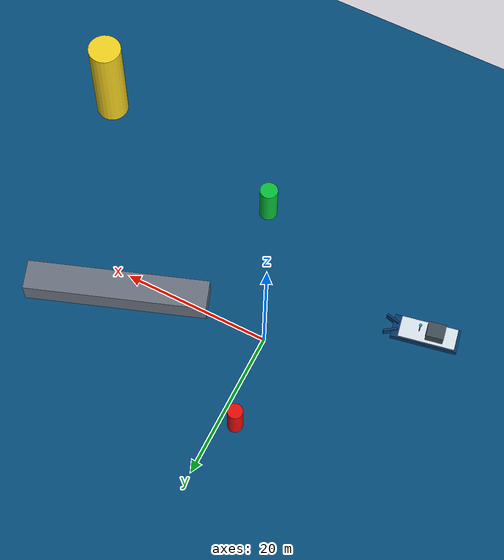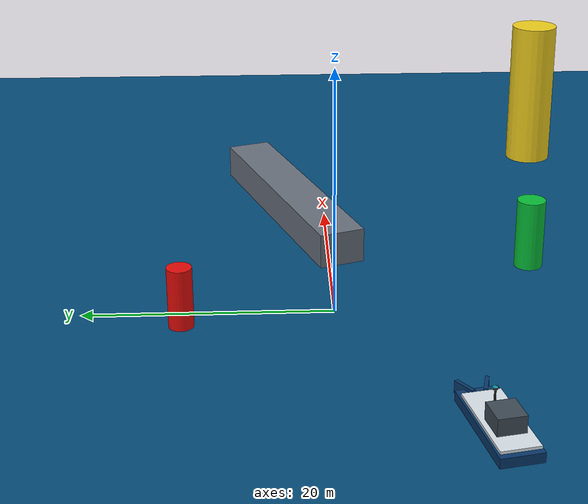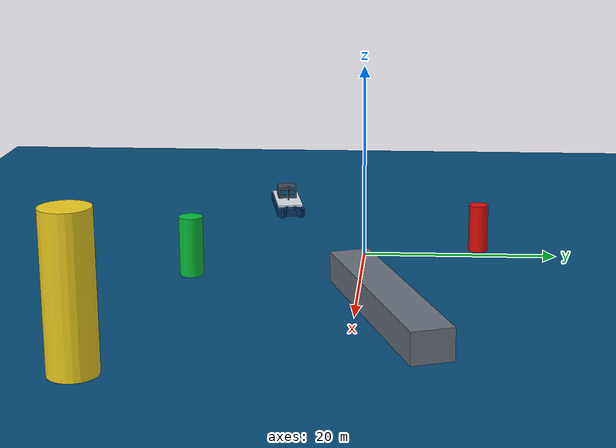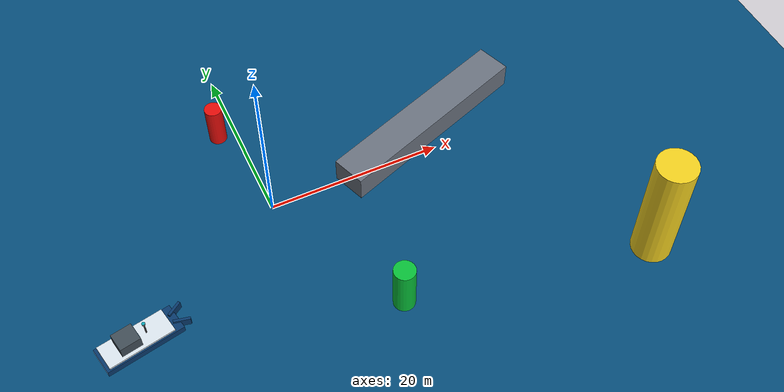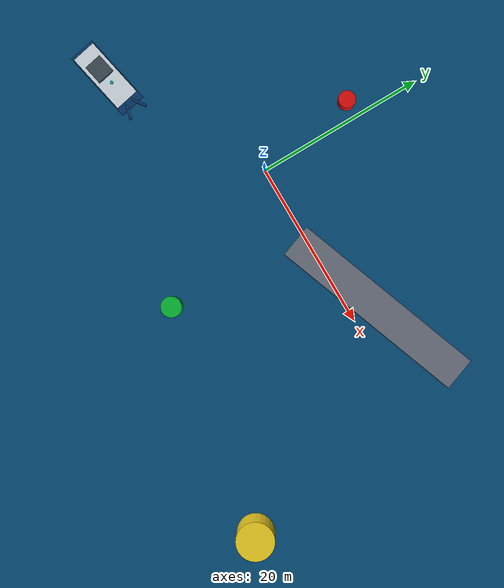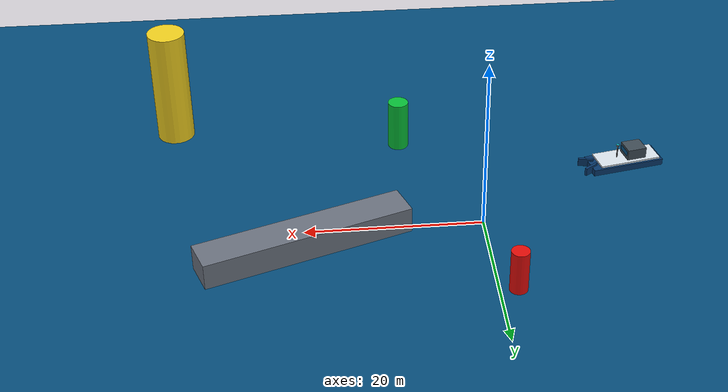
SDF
<sdf version="1.10">
 <world name="mid360_sensor_demo">
  <plugin filename="RGLServerPluginManager" name="rgl::RGLServerPluginManager">
   <do_ignore_entities_in_lidar_link>true</do_ignore_entities_in_lidar_link>
  </plugin>
  <plugin filename="gz-sim-physics-system" name="gz::sim::systems::Physics"/>
  <plugin filename="gz-sim-user-commands-system" name="gz::sim::systems::UserCommands"/>
  <plugin filename="gz-sim-scene-broadcaster-system" name="gz::sim::systems::SceneBroadcaster"/>
  <plugin filename="gz-sim-sensors-system" name="gz::sim::systems::Sensors">
   <render_engine>ogre2</render_engine>
  </plugin>
  <physics type="ode">
   <max_step_size>0.004</max_step_size>
   <real_time_factor>1</real_time_factor>
   <real_time_update_rate>250</real_time_update_rate>
  </physics>
  <gravity>0 0 -9.8</gravity>
  <scene>
   <grid>false</grid>
   <ambient>0.72 0.76 0.82 1</ambient>
   <background>0.78 0.88 0.96 1</background>
   <shadows>true</shadows>
  </scene>
  <model name="ocean_plane">
   <static>true</static>
   <link name="ocean_link">
    <visual name="ocean_visual">
     <pose>0 0 -0.04 0 0 0</pose>
     <geometry><plane><normal>0 0 1</normal><size>220 220</size></plane></geometry>
     <material>
      <ambient>0.01 0.12 0.2 0.88</ambient>
      <diffuse>0.02 0.3 0.48 0.88</diffuse>
      <specular>0.12 0.16 0.2 1</specular>
     </material>
    </visual>
   </link>
  </model>
  <include><uri>model://mid360_demo_usv</uri><name>usv_01</name><pose>-18 -10 0.72 0 0 0.2</pose></include>
  <model name="navigation_pier">
   <static>true</static>
   <pose>20 3 1.5 0 0 0.35</pose>
   <link name="pier_link">
    <collision name="pier_collision"><geometry><box><size>24 4 3</size></box></geometry></collision>
    <visual name="pier_visual">
     <geometry><box><size>24 4 3</size></box></geometry>
     <material><ambient>0.25 0.27 0.3 1</ambient><diffuse>0.42 0.45 0.5 1</diffuse></material>
    </visual>
   </link>
  </model>
  <model name="red_buoy">
   <static>true</static>
   <pose>-2 12 2.5 0 0 0</pose>
   <link name="buoy_link">
    <collision name="buoy_collision">
     <geometry><cylinder><radius>1.0</radius><length>5</length></cylinder></geometry>
    </collision>
    <visual name="buoy_visual">
     <geometry><cylinder><radius>1.0</radius><length>5</length></cylinder></geometry>
     <material><ambient>0.55 0.02 0.02 1</ambient><diffuse>0.9 0.05 0.04 1</diffuse></material>
    </visual>
   </link>
  </model>
  <model name="green_buoy">
   <static>true</static>
   <pose>8 -17 3.0 0 0 0</pose>
   <link name="buoy_link">
    <collision name="buoy_collision">
     <geometry><cylinder><radius>1.2</radius><length>6</length></cylinder></geometry>
    </collision>
    <visual name="buoy_visual">
     <geometry><cylinder><radius>1.2</radius><length>6</length></cylinder></geometry>
     <material><ambient>0.02 0.35 0.12 1</ambient><diffuse>0.03 0.75 0.22 1</diffuse></material>
    </visual>
   </link>
  </model>
  <model name="lighthouse">
   <static>true</static>
   <pose>35 -22 7 0 0 0</pose>
   <link name="tower_link">
    <collision name="tower_collision">
     <geometry><cylinder><radius>2.2</radius><length>14</length></cylinder></geometry>
    </collision>
    <visual name="tower_visual">
     <geometry><cylinder><radius>2.2</radius><length>14</length></cylinder></geometry>
     <material><ambient>0.72 0.62 0.08 1</ambient><diffuse>0.95 0.82 0.12 1</diffuse></material>
    </visual>
   </link>
  </model>
  <light name="sun" type="directional">
   <pose>0 0 80 0 0 0</pose>
   <intensity>1.05</intensity>
   <direction>-0.35 0.2 -0.92</direction>
   <diffuse>0.9 0.9 0.86 1</diffuse>
   <specular>0.25 0.25 0.25 1</specular>
  </light>
 </world>
</sdf>

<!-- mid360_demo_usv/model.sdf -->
<sdf version="1.10">
  <model name="mid360_demo_usv">
    <pose>0 0 0.72 0 0 0</pose>

    <link name="base_link">
      <gravity>false</gravity>
      <inertial>
        <mass>260</mass>
        <inertia>
          <ixx>180</ixx>
          <iyy>920</iyy>
          <izz>1050</izz>
        </inertia>
      </inertial>

      <collision name="hull_collision">
        <pose>-0.2 0 0 0 0 0</pose>
        <geometry>
          <box><size>8.8 3.2 1.0</size></box>
        </geometry>
      </collision>

      <visual name="lower_hull">
        <pose>-0.25 0 -0.15 0 0 0</pose>
        <geometry>
          <box><size>8.7 3.15 0.75</size></box>
        </geometry>
        <material>
          <ambient>0.02 0.08 0.14 1</ambient>
          <diffuse>0.03 0.22 0.42 1</diffuse>
          <specular>0.3 0.4 0.5 1</specular>
        </material>
      </visual>

      <visual name="deck">
        <pose>-0.55 0 0.42 0 0 0</pose>
        <geometry>
          <box><size>7.4 2.9 0.22</size></box>
        </geometry>
        <material>
          <ambient>0.65 0.7 0.74 1</ambient>
          <diffuse>0.86 0.9 0.93 1</diffuse>
        </material>
      </visual>

      <visual name="cabin">
        <pose>-1.45 0 1.15 0 0 0</pose>
        <geometry>
          <box><size>2.3 2.1 1.35</size></box>
        </geometry>
        <material>
          <ambient>0.12 0.15 0.18 1</ambient>
          <diffuse>0.25 0.3 0.34 1</diffuse>
        </material>
      </visual>

      <visual name="cabin_window">
        <pose>-0.27 0 1.28 0 0 0</pose>
        <geometry>
          <box><size>0.04 1.65 0.55</size></box>
        </geometry>
        <material>
          <ambient>0.02 0.16 0.25 1</ambient>
          <diffuse>0.03 0.34 0.55 1</diffuse>
          <specular>0.8 0.9 1 1</specular>
        </material>
      </visual>

      <visual name="bow_left">
        <pose>4.25 0.8 0 0 0 0.42</pose>
        <geometry>
          <box><size>1.8 0.3 0.95</size></box>
        </geometry>
        <material>
          <ambient>0.02 0.08 0.14 1</ambient>
          <diffuse>0.03 0.22 0.42 1</diffuse>
        </material>
      </visual>

      <visual name="bow_right">
        <pose>4.25 -0.8 0 0 0 -0.42</pose>
        <geometry>
          <box><size>1.8 0.3 0.95</size></box>
        </geometry>
        <material>
          <ambient>0.02 0.08 0.14 1</ambient>
          <diffuse>0.03 0.22 0.42 1</diffuse>
        </material>
      </visual>

      <visual name="sensor_mast">
        <pose>0.65 0 1.3 0 0 0</pose>
        <geometry>
          <cylinder><radius>0.08</radius><length>1.6</length></cylinder>
        </geometry>
        <material>
          <ambient>0.04 0.04 0.045 1</ambient>
          <diffuse>0.08 0.08 0.09 1</diffuse>
        </material>
      </visual>
    </link>

    <link name="mid360_link">
      <pose relative_to="base_link">0.65 0 2.18 0 0 0</pose>
      <gravity>false</gravity>
      <inertial>
        <mass>0.265</mass>
        <inertia>
          <ixx>0.00015</ixx>
          <iyy>0.00015</iyy>
          <izz>0.00015</izz>
        </inertia>
      </inertial>

      <visual name="mid360_body">
        <geometry>
          <cylinder><radius>0.18</radius><length>0.18</length></cylinder>
        </geometry>
        <material>
          <ambient>0.04 0.04 0.045 1</ambient>
          <diffuse>0.08 0.08 0.09 1</diffuse>
          <specular>0.4 0.4 0.42 1</specular>
        </material>
      </visual>

      <visual name="mid360_lens">
        <pose>0 0 0.065 0 0 0</pose>
        <geometry>
          <cylinder><radius>0.185</radius><length>0.055</length></cylinder>
        </geometry>
        <material>
          <ambient>0.03 0.26 0.3 1</ambient>
          <diffuse>0.05 0.65 0.72 1</diffuse>
          <specular>0.8 0.9 0.95 1</specular>
        </material>
      </visual>

      <sensor name="mid360_rgl" type="custom">
        <plugin
          filename="RGLServerPluginInstance"
          name="rgl::RGLServerPluginInstance">
          <range>
            <min>0.1</min>
            <max>70.0</max>
          </range>
          <update_rate>10</update_rate>
          <update_on_paused_sim>false</update_on_paused_sim>
          <topic>/usv_01/mid360_rgl/points</topic>
          <frame>usv_01/mid360_link</frame>
          <pattern_preset>Livox Mid360</pattern_preset>
        </plugin>
      </sensor>
    </link>

    <joint name="mid360_mount" type="fixed">
      <parent>base_link</parent>
      <child>mid360_link</child>
    </joint>

    <plugin
      filename="gz-sim-velocity-control-system"
      name="gz::sim::systems::VelocityControl">
      <topic>/model/usv_01/cmd_vel</topic>
      <control_linear_velocity>true</control_linear_velocity>
      <control_angular_velocity>true</control_angular_velocity>
    </plugin>

    <plugin
      filename="gz-sim-pose-publisher-system"
      name="gz::sim::systems::PosePublisher">
      <publish_model_pose>true</publish_model_pose>
      <publish_link_pose>false</publish_link_pose>
      <publish_collision_pose>false</publish_collision_pose>
      <publish_visual_pose>false</publish_visual_pose>
      <publish_nested_model_pose>false</publish_nested_model_pose>
      <publish_sensor_pose>false</publish_sensor_pose>
      <use_pose_vector_msg>true</use_pose_vector_msg>
      <update_frequency>30</update_frequency>
    </plugin>
  </model>
</sdf>
